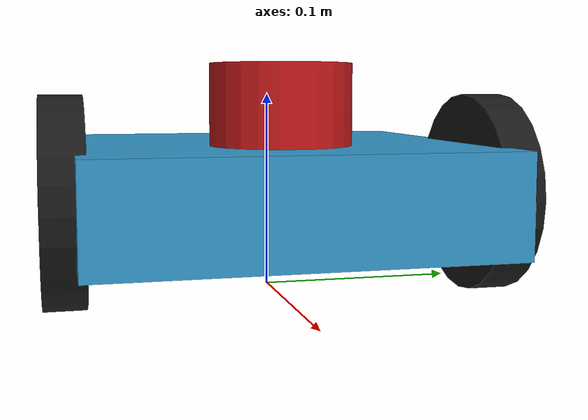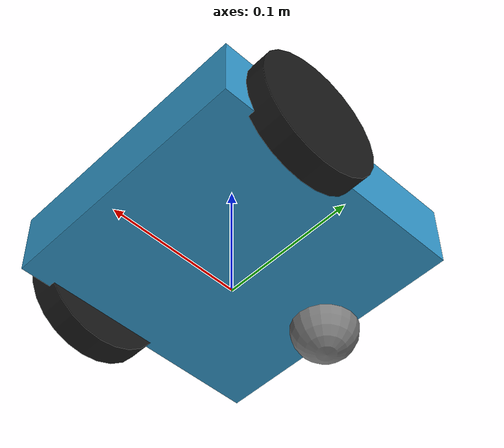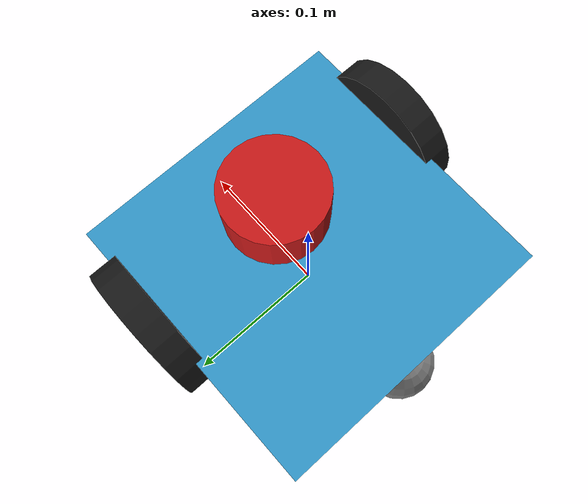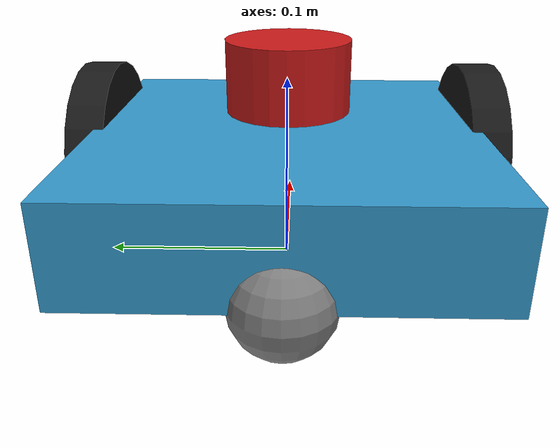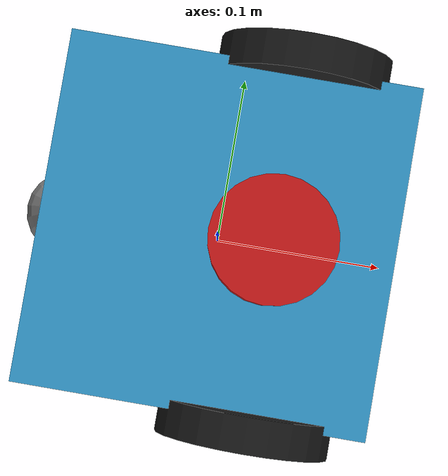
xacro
<?xml version="1.0"?>
<robot xmlns:xacro="http://www.ros.org/wiki/xacro" name="lidar_robot">

  <!-- ========== PROPERTIES ========== -->
  <xacro:property name="chassis_length" value="0.20"/>
  <xacro:property name="chassis_width"  value="0.20"/>
  <xacro:property name="chassis_height" value="0.05"/>
  <xacro:property name="chassis_mass"   value="1.0"/>

  <xacro:property name="wheel_radius" value="0.05"/>
  <xacro:property name="wheel_width"  value="0.02"/>
  <xacro:property name="wheel_mass"   value="0.05"/>

  <!-- Banh day ve phia truoc 2/3 than -->
  <xacro:property name="wheel_offset_x" value="0.033"/>
  <xacro:property name="wheel_offset_y" value="0.105"/>
  <xacro:property name="wheel_offset_z" value="0.05"/>

  <xacro:property name="chassis_offset_z" value="0.05"/>

  <!-- Caster lui ve sau -->
  <xacro:property name="caster_radius"   value="0.025"/>
  <xacro:property name="caster_mass"     value="0.02"/>
  <xacro:property name="caster_offset_x" value="-0.09"/>
  <xacro:property name="caster_offset_z" value="0.025"/>

  <!-- LiDAR -->
  <xacro:property name="lidar_radius"    value="0.035"/>
  <xacro:property name="lidar_height"    value="0.04"/>
  <xacro:property name="lidar_mass"      value="0.17"/>
  <xacro:property name="lidar_offset_x"  value="0.03"/>
  <xacro:property name="lidar_offset_z"  value="0.095"/>

  <!-- ========== MATERIALS ========== -->
  <material name="blue">  <color rgba="0.2 0.6 0.8 1.0"/> </material>
  <material name="black"> <color rgba="0.1 0.1 0.1 1.0"/> </material>
  <material name="gray">  <color rgba="0.5 0.5 0.5 1.0"/> </material>
  <material name="red">   <color rgba="0.8 0.1 0.1 1.0"/> </material>

  <!-- ========== BASE FOOTPRINT ========== -->
  <link name="base_footprint"/>

  <joint name="base_footprint_joint" type="fixed">
    <parent link="base_footprint"/>
    <child  link="base_link"/>
    <origin xyz="0 0 ${chassis_offset_z}" rpy="0 0 0"/>
  </joint>

  <!-- ========== CHASSIS ========== -->
  <link name="base_link">
    <visual>
      <geometry>
        <box size="${chassis_length} ${chassis_width} ${chassis_height}"/>
      </geometry>
      <material name="blue"/>
    </visual>
    <collision>
      <geometry>
        <box size="${chassis_length} ${chassis_width} ${chassis_height}"/>
      </geometry>
    </collision>
    <inertial>
      <mass value="${chassis_mass}"/>
      <inertia
        ixx="${chassis_mass * (chassis_width*chassis_width + chassis_height*chassis_height) / 12}"
        iyy="${chassis_mass * (chassis_length*chassis_length + chassis_height*chassis_height) / 12}"
        izz="${chassis_mass * (chassis_length*chassis_length + chassis_width*chassis_width) / 12}"
        ixy="0" ixz="0" iyz="0"/>
    </inertial>
  </link>

  <!-- ========== LEFT WHEEL ========== -->
  <link name="left_wheel">
    <visual>
      <origin xyz="0 0 0" rpy="${pi/2} 0 0"/>
      <geometry>
        <cylinder radius="${wheel_radius}" length="${wheel_width}"/>
      </geometry>
      <material name="black"/>
    </visual>
    <collision>
      <origin xyz="0 0 0" rpy="${pi/2} 0 0"/>
      <geometry>
        <cylinder radius="${wheel_radius}" length="${wheel_width}"/>
      </geometry>
    </collision>
    <inertial>
      <mass value="${wheel_mass}"/>
      <inertia
        ixx="${wheel_mass * (3*wheel_radius*wheel_radius + wheel_width*wheel_width) / 12}"
        iyy="${wheel_mass * wheel_radius * wheel_radius / 2}"
        izz="${wheel_mass * (3*wheel_radius*wheel_radius + wheel_width*wheel_width) / 12}"
        ixy="0" ixz="0" iyz="0"/>
    </inertial>
  </link>

  <joint name="left_wheel_joint" type="continuous">
    <parent link="base_link"/>
    <child  link="left_wheel"/>
    <origin xyz="${wheel_offset_x} ${wheel_offset_y} 0" rpy="0 0 0"/>
    <axis xyz="0 1 0"/>
  </joint>

  <!-- ========== RIGHT WHEEL ========== -->
  <link name="right_wheel">
    <visual>
      <origin xyz="0 0 0" rpy="${pi/2} 0 0"/>
      <geometry>
        <cylinder radius="${wheel_radius}" length="${wheel_width}"/>
      </geometry>
      <material name="black"/>
    </visual>
    <collision>
      <origin xyz="0 0 0" rpy="${pi/2} 0 0"/>
      <geometry>
        <cylinder radius="${wheel_radius}" length="${wheel_width}"/>
      </geometry>
    </collision>
    <inertial>
      <mass value="${wheel_mass}"/>
      <inertia
        ixx="${wheel_mass * (3*wheel_radius*wheel_radius + wheel_width*wheel_width) / 12}"
        iyy="${wheel_mass * wheel_radius * wheel_radius / 2}"
        izz="${wheel_mass * (3*wheel_radius*wheel_radius + wheel_width*wheel_width) / 12}"
        ixy="0" ixz="0" iyz="0"/>
    </inertial>
  </link>

  <joint name="right_wheel_joint" type="continuous">
    <parent link="base_link"/>
    <child  link="right_wheel"/>
    <origin xyz="${wheel_offset_x} -${wheel_offset_y} 0" rpy="0 0 0"/>
    <axis xyz="0 1 0"/>
  </joint>

  <!-- ========== CASTER (BANH PHU SAU) ========== -->
  <link name="caster_link">
    <visual>
      <geometry>
        <sphere radius="${caster_radius}"/>
      </geometry>
      <material name="gray"/>
    </visual>
    <collision>
      <geometry>
        <sphere radius="${caster_radius}"/>
      </geometry>
    </collision>
    <inertial>
      <mass value="${caster_mass}"/>
      <inertia
        ixx="${2*caster_mass*caster_radius*caster_radius/5}"
        iyy="${2*caster_mass*caster_radius*caster_radius/5}"
        izz="${2*caster_mass*caster_radius*caster_radius/5}"
        ixy="0" ixz="0" iyz="0"/>
    </inertial>
  </link>

  <joint name="caster_joint" type="fixed">
    <parent link="base_link"/>
    <child  link="caster_link"/>
    <origin xyz="${caster_offset_x} 0 ${caster_offset_z - chassis_offset_z}" rpy="0 0 0"/>
  </joint>

  <!-- ========== LIDAR ========== -->
  <link name="lidar_link">
    <visual>
      <geometry>
        <cylinder radius="${lidar_radius}" length="${lidar_height}"/>
      </geometry>
      <material name="red"/>
    </visual>
    <collision>
      <geometry>
        <cylinder radius="${lidar_radius}" length="${lidar_height}"/>
      </geometry>
    </collision>
    <inertial>
      <mass value="${lidar_mass}"/>
      <inertia
        ixx="${lidar_mass * (3*lidar_radius*lidar_radius + lidar_height*lidar_height) / 12}"
        iyy="${lidar_mass * (3*lidar_radius*lidar_radius + lidar_height*lidar_height) / 12}"
        izz="${lidar_mass * lidar_radius * lidar_radius / 2}"
        ixy="0" ixz="0" iyz="0"/>
    </inertial>
  </link>

  <joint name="lidar_joint" type="fixed">
    <parent link="base_link"/>
    <child  link="lidar_link"/>
    <origin xyz="${lidar_offset_x} 0 ${lidar_offset_z - chassis_offset_z}" rpy="0 0 0"/>
  </joint>

  <!-- ========== GAZEBO: FRICTION ========== -->
  <gazebo reference="left_wheel">
    <mu1>1.0</mu1>
    <mu2>1.0</mu2>
  </gazebo>

  <gazebo reference="right_wheel">
    <mu1>1.0</mu1>
    <mu2>1.0</mu2>
  </gazebo>

  <gazebo reference="caster_link">
    <mu1>0.0</mu1>
    <mu2>0.0</mu2>
    <kp>1000000.0</kp>
    <kd>100.0</kd>
  </gazebo>

  <!-- ========== GAZEBO: LIDAR SENSOR ========== -->
  <gazebo reference="lidar_link">
    <sensor name="lidar" type="gpu_lidar">
      <gz_frame_id>lidar_link</gz_frame_id>
      <topic>scan</topic>
      <update_rate>10</update_rate>
      <always_on>true</always_on>
      <visualize>true</visualize>
      <lidar>
        <scan>
          <horizontal>
            <samples>360</samples>
            <resolution>1</resolution>
            <min_angle>-3.14159</min_angle>
            <max_angle>3.14159</max_angle>
          </horizontal>
        </scan>
        <range>
          <min>0.12</min>
          <max>12.0</max>
          <resolution>0.01</resolution>
        </range>
        <noise>
          <type>gaussian</type>
          <mean>0.0</mean>
          <stddev>0.01</stddev>
        </noise>
      </lidar>
    </sensor>
  </gazebo>

  <!-- ========== GAZEBO: DIFF DRIVE PLUGIN ========== -->
  <gazebo>
    <plugin filename="gz-sim-diff-drive-system"
            name="gz::sim::systems::DiffDrive">
      <left_joint>left_wheel_joint</left_joint>
      <right_joint>right_wheel_joint</right_joint>
      <wheel_separation>${wheel_offset_y * 2}</wheel_separation>
      <wheel_radius>${wheel_radius}</wheel_radius>
      <topic>/cmd_vel</topic>
      <odom_topic>/odom</odom_topic>
      <tf_topic>/tf</tf_topic>
      <max_linear_acceleration>1.0</max_linear_acceleration>
      <min_linear_acceleration>-1.0</min_linear_acceleration>
      <max_angular_acceleration>2.0</max_angular_acceleration>
      <min_angular_acceleration>-2.0</min_angular_acceleration>
      <max_linear_velocity>0.5</max_linear_velocity>
      <min_linear_velocity>-0.5</min_linear_velocity>
      <max_angular_velocity>1.5</max_angular_velocity>
      <min_angular_velocity>-1.5</min_angular_velocity>
      <odom_publish_frequency>30</odom_publish_frequency>
    </plugin>
  </gazebo>

</robot>
